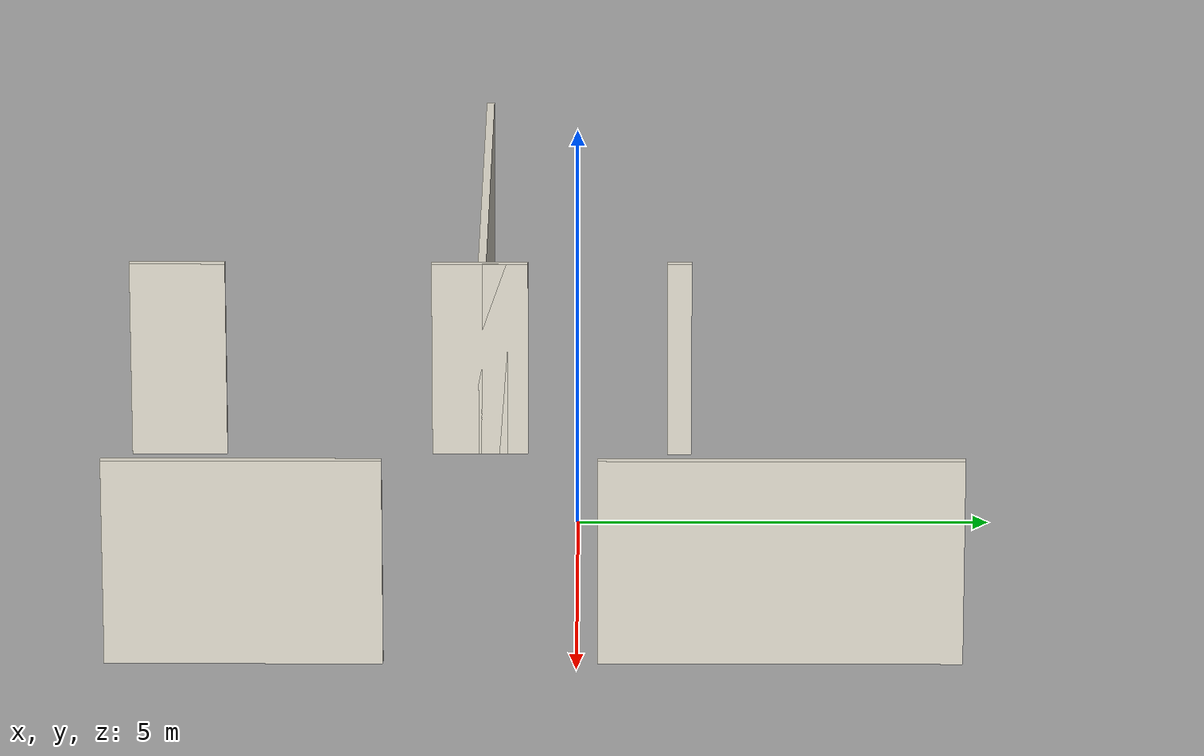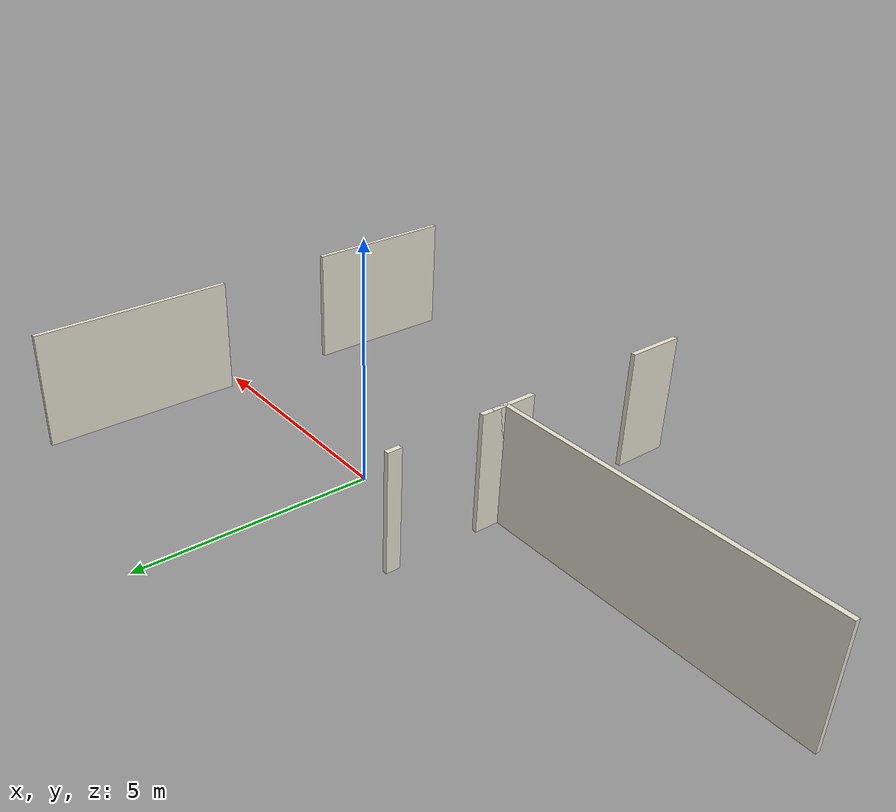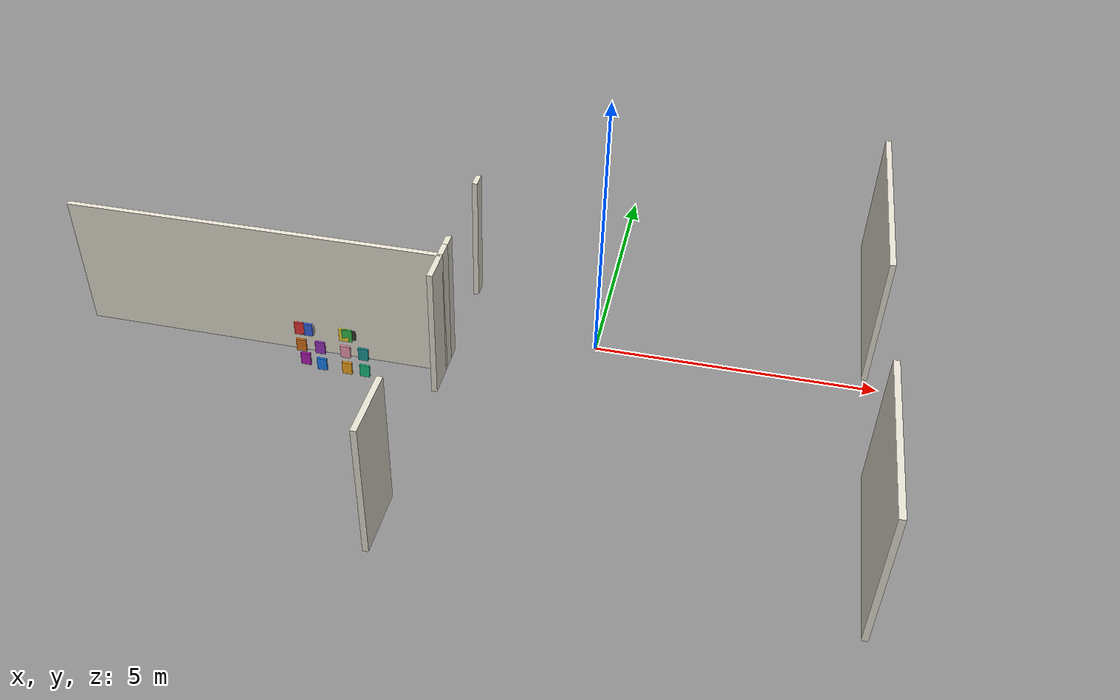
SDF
<sdf version="1.6">
 <world name="world_demo">
  <atmosphere type="adiabatic"/>
  <physics name="1ms" type="ignored">
   <max_step_size>0.01</max_step_size>
   <real_time_factor>1</real_time_factor>
  </physics>
  <plugin name="ignition::gazebo::systems::Physics" filename="libignition-gazebo-physics-system.so"/>
  <plugin name="ignition::gazebo::systems::UserCommands" filename="libignition-gazebo-user-commands-system.so"/>
  <plugin name="ignition::gazebo::systems::SceneBroadcaster" filename="libignition-gazebo-scene-broadcaster-system.so"/>
  <plugin name="ignition::gazebo::systems::Imu" filename="ignition-gazebo-imu-system"/>
  <plugin name="ignition::gazebo::systems::Sensors" filename="ignition-gazebo-sensors-system">
   <render_engine>ogre2</render_engine>
  </plugin>
  <plugin name="icclab::DynamicGripperAttach" filename="DynamicGripperAttach">
   <parent_model>summit</parent_model>
   <parent_link>arm_wrist_3_link</parent_link>
   <attach_topic>/gripper/attach</attach_topic>
   <detach_topic>/gripper/detach</detach_topic>
  </plugin>
  <scene>
   <ambient>0.4 0.4 0.4 1</ambient>
   <background>0.7 0.7 0.7 1</background>
   <shadows>false</shadows>
   <grid>false</grid>
   <origin_visual>false</origin_visual>
  </scene>
  <spherical_coordinates>
   <surface_model>EARTH_WGS84</surface_model>
   <latitude_deg>0</latitude_deg>
   <longitude_deg>0</longitude_deg>
   <elevation>0</elevation>
   <heading_deg>0</heading_deg>
  </spherical_coordinates>
  <light name="LivingRoom_CeilingLight_0" type="point">
   <pose>1.194296 4.155759 2.2 0 -0 0</pose>
   <diffuse>0.5 0.5 0.5 1</diffuse>
   <specular>0.1 0.1 0.1 1</specular>
   <attenuation>
    <range>20</range>
    <constant>0.32</constant>
    <linear>0.01</linear>
    <quadratic>0.03</quadratic>
   </attenuation>
   <cast_shadows>0</cast_shadows>
   <direction>0 0 -1</direction>
  </light>
  <light name="LivingRoom_CeilingLight_1" type="point">
   <pose>1.194296 -1.589959 2.2 0 -0 0</pose>
   <diffuse>0.5 0.5 0.5 1</diffuse>
   <specular>0.1 0.1 0.1 1</specular>
   <attenuation>
    <range>20</range>
    <constant>0.05</constant>
    <linear>0.01</linear>
    <quadratic>0.09</quadratic>
   </attenuation>
   <cast_shadows>0</cast_shadows>
   <direction>0 0 -1</direction>
  </light>
  <light name="LivingRoom_WallLight_0" type="point">
   <pose>1.76956 -5.444370 2.2 0 -0 0</pose>
   <diffuse>0.24 0.24 0.24 1</diffuse>
   <specular>0.1 0.1 0.1 1</specular>
   <attenuation>
    <range>20</range>
    <constant>0.12</constant>
    <linear>0.00</linear>
    <quadratic>0.03</quadratic>
   </attenuation>
   <direction>0 0 -1</direction>
  </light>
  <light name="LivingRoom_WallLight_1" type="point">
   <pose>-0.13826 -5.444370 2.2 0 -0 0</pose>
   <diffuse>0.24 0.24 0.24 1</diffuse>
   <specular>0.1 0.1 0.1 1</specular>
   <attenuation>
    <range>20</range>
    <constant>0.12</constant>
    <linear>0.00</linear>
    <quadratic>0.03</quadratic>
   </attenuation>
   <direction>0 0 -1</direction>
  </light>
  <light name="TV_Light_0" type="point">
   <pose>0.8269 -4.939577 1.1 0 -0 0</pose>
   <diffuse>0.31372 0.31372 0.34901 1</diffuse>
   <specular>0.1 0.1 0.1 1</specular>
   <attenuation>
    <range>3</range>
    <constant>0.10</constant>
    <linear>0.04</linear>
    <quadratic>0.50</quadratic>
   </attenuation>
   <direction>0 0 -1</direction>
  </light>
  <light name="BedRoom_Portrait_Light_0" type="spot">
   <pose>-6.190379 -1.829697 1.5587 0.3 -0 0.0</pose>
   <diffuse>0.5 0.5 0.5 1</diffuse>
   <specular>0.1 0.1 0.1 1</specular>
   <attenuation>
    <range>20</range>
    <constant>0.50</constant>
    <linear>0.01</linear>
    <quadratic>0.00</quadratic>
   </attenuation>
   <spot><inner_angle>0.6</inner_angle><outer_angle>1.0</outer_angle><falloff>1.0</falloff></spot>
   <direction>0 0 -1</direction>
  </light>
  <light name="BedRoom_CeilingLight_0" type="point">
   <pose>-6.451061 -0.692040 2.000000 0 -0 0</pose>
   <diffuse>0.5 0.5 0.5 1</diffuse>
   <specular>0.1 0.1 0.1 1</specular>
   <attenuation>
    <range>20</range>
    <constant>0.32</constant>
    <linear>0.01</linear>
    <quadratic>0.03</quadratic>
   </attenuation>
   <cast_shadows>0</cast_shadows>
   <direction>0 0 -1</direction>
  </light>
  <light name="Kitchen_CeilingLight_0" type="point">
   <pose>7.8582 -1.5905 2.280000 0 -0 0</pose>
   <diffuse>0.5 0.5 0.5 1</diffuse>
   <specular>0.1 0.1 0.1 1</specular>
   <attenuation>
    <range>20</range>
    <constant>0.3</constant>
    <linear>0.01</linear>
    <quadratic>0.01</quadratic>
   </attenuation>
   <cast_shadows>0</cast_shadows>
   <direction>0 0 -1</direction>
  </light>
  <model name="Bedroom_South_Divider">
   <static>true</static>
   <pose>-5.95 -1.21 1.25 0 0 0</pose>
   <link name="link">
    <collision name="collision"><geometry><box><size>6.9 0.1 2.5</size></box></geometry></collision>
    <visual name="visual">
     <geometry><box><size>6.9 0.1 2.5</size></box></geometry>
     <material>
      <ambient>0.9 0.88 0.82 1</ambient>
      <diffuse>0.9 0.88 0.82 1</diffuse>
      <specular>0.1 0.1 0.1 1</specular>
     </material>
    </visual>
   </link>
  </model>
  <model name="Bedroom_East_North">
   <static>true</static>
   <pose>-2.55 1.25 1.25 0 0 0</pose>
   <link name="link">
    <collision name="collision"><geometry><box><size>0.1 0.30 2.5</size></box></geometry></collision>
    <visual name="visual">
     <geometry><box><size>0.1 0.30 2.5</size></box></geometry>
     <material>
      <ambient>0.9 0.88 0.82 1</ambient>
      <diffuse>0.9 0.88 0.82 1</diffuse>
      <specular>0.1 0.1 0.1 1</specular>
     </material>
    </visual>
   </link>
  </model>
  <model name="Bedroom_East_South">
   <static>true</static>
   <pose>-2.55 -1.055 1.25 0 0 0</pose>
   <link name="link">
    <collision name="collision"><geometry><box><size>0.1 0.31 2.5</size></box></geometry></collision>
    <visual name="visual">
     <geometry><box><size>0.1 0.31 2.5</size></box></geometry>
     <material>
      <ambient>0.9 0.88 0.82 1</ambient>
      <diffuse>0.9 0.88 0.82 1</diffuse>
      <specular>0.1 0.1 0.1 1</specular>
     </material>
    </visual>
   </link>
  </model>
  <model name="KidsRoom_East_North">
   <static>true</static>
   <pose>-2.55 -1.24 1.25 0 0 0</pose>
   <link name="link">
    <collision name="collision"><geometry><box><size>0.1 1.20 2.5</size></box></geometry></collision>
    <visual name="visual">
     <geometry><box><size>0.1 1.20 2.5</size></box></geometry>
     <material>
      <ambient>0.9 0.88 0.82 1</ambient>
      <diffuse>0.9 0.88 0.82 1</diffuse>
      <specular>0.1 0.1 0.1 1</specular>
     </material>
    </visual>
   </link>
  </model>
  <model name="KidsRoom_East_South">
   <static>true</static>
   <pose>-2.55 -5.005 1.25 0 0 0</pose>
   <link name="link">
    <collision name="collision"><geometry><box><size>0.1 1.19 2.5</size></box></geometry></collision>
    <visual name="visual">
     <geometry><box><size>0.1 1.19 2.5</size></box></geometry>
     <material>
      <ambient>0.9 0.88 0.82 1</ambient>
      <diffuse>0.9 0.88 0.82 1</diffuse>
      <specular>0.1 0.1 0.1 1</specular>
     </material>
    </visual>
   </link>
  </model>
  <model name="KidsRoom_Book_1">
   <static>true</static>
   <pose>-5.00 -1.76 0.895 0 0 0</pose>
   <link name="link">
    <visual name="visual">
     <geometry><box><size>0.18 0.04 0.25</size></box></geometry>
     <material><ambient>0.7 0.1 0.1 1</ambient><diffuse>0.9 0.2 0.2 1</diffuse></material>
    </visual>
    <collision name="collision"><geometry><box><size>0.18 0.04 0.25</size></box></geometry></collision>
   </link>
  </model>
  <model name="KidsRoom_Book_2">
   <static>true</static>
   <pose>-4.85 -1.76 0.895 0 0 0</pose>
   <link name="link">
    <visual name="visual">
     <geometry><box><size>0.18 0.04 0.25</size></box></geometry>
     <material><ambient>0.1 0.2 0.6 1</ambient><diffuse>0.2 0.4 0.9 1</diffuse></material>
    </visual>
    <collision name="collision"><geometry><box><size>0.18 0.04 0.25</size></box></geometry></collision>
   </link>
  </model>
  <model name="KidsRoom_Book_3">
   <static>true</static>
   <pose>-4.18 -1.76 0.895 0 0 0</pose>
   <link name="link">
    <visual name="visual">
     <geometry><box><size>0.18 0.04 0.25</size></box></geometry>
     <material><ambient>0.7 0.6 0.1 1</ambient><diffuse>0.95 0.85 0.2 1</diffuse></material>
    </visual>
    <collision name="collision"><geometry><box><size>0.18 0.04 0.25</size></box></geometry></collision>
   </link>
  </model>
  <model name="KidsRoom_Book_4">
   <static>true</static>
   <pose>-4.12 -1.76 0.895 0 0 0</pose>
   <link name="link">
    <visual name="visual">
     <geometry><box><size>0.18 0.04 0.25</size></box></geometry>
     <material><ambient>0.1 0.5 0.2 1</ambient><diffuse>0.2 0.75 0.3 1</diffuse></material>
    </visual>
    <collision name="collision"><geometry><box><size>0.18 0.04 0.25</size></box></geometry></collision>
   </link>
  </model>
  <model name="KidsRoom_Book_5">
   <static>true</static>
   <pose>-5.00 -1.76 0.525 0 0 0</pose>
   <link name="link">
    <visual name="visual">
     <geometry><box><size>0.18 0.04 0.25</size></box></geometry>
     <material><ambient>0.6 0.3 0.05 1</ambient><diffuse>0.85 0.45 0.1 1</diffuse></material>
    </visual>
    <collision name="collision"><geometry><box><size>0.18 0.04 0.25</size></box></geometry></collision>
   </link>
  </model>
  <model name="KidsRoom_Book_6">
   <static>true</static>
   <pose>-4.65 -1.76 0.525 0 0 0</pose>
   <link name="link">
    <visual name="visual">
     <geometry><box><size>0.18 0.04 0.25</size></box></geometry>
     <material><ambient>0.4 0.1 0.5 1</ambient><diffuse>0.6 0.2 0.75 1</diffuse></material>
    </visual>
    <collision name="collision"><geometry><box><size>0.18 0.04 0.25</size></box></geometry></collision>
   </link>
  </model>
  <model name="KidsRoom_Book_7">
   <static>true</static>
   <pose>-4.18 -1.76 0.525 0 0 0</pose>
   <link name="link">
    <visual name="visual">
     <geometry><box><size>0.18 0.04 0.25</size></box></geometry>
     <material><ambient>0.7 0.4 0.5 1</ambient><diffuse>0.95 0.6 0.7 1</diffuse></material>
    </visual>
    <collision name="collision"><geometry><box><size>0.18 0.04 0.25</size></box></geometry></collision>
   </link>
  </model>
  <model name="KidsRoom_Book_8">
   <static>true</static>
   <pose>-3.85 -1.76 0.525 0 0 0</pose>
   <link name="link">
    <visual name="visual">
     <geometry><box><size>0.18 0.04 0.25</size></box></geometry>
     <material><ambient>0.05 0.4 0.4 1</ambient><diffuse>0.1 0.6 0.6 1</diffuse></material>
    </visual>
    <collision name="collision"><geometry><box><size>0.18 0.04 0.25</size></box></geometry></collision>
   </link>
  </model>
  <model name="KidsRoom_Book_9">
   <static>true</static>
   <pose>-4.92 -1.62 0.79 0 1.5708 0</pose>
   <link name="link">
    <visual name="visual">
     <geometry><box><size>0.18 0.04 0.25</size></box></geometry>
     <material><ambient>0.85 0.85 0.85 1</ambient><diffuse>0.95 0.95 0.95 1</diffuse></material>
    </visual>
    <collision name="collision"><geometry><box><size>0.18 0.04 0.25</size></box></geometry></collision>
   </link>
  </model>
  <model name="KidsRoom_Book_10">
   <static>true</static>
   <pose>-4.15 -1.62 0.79 0 1.5708 0</pose>
   <link name="link">
    <visual name="visual">
     <geometry><box><size>0.18 0.04 0.25</size></box></geometry>
     <material><ambient>0.15 0.15 0.15 1</ambient><diffuse>0.25 0.25 0.25 1</diffuse></material>
    </visual>
    <collision name="collision"><geometry><box><size>0.18 0.04 0.25</size></box></geometry></collision>
   </link>
  </model>
  <model name="KidsRoom_Book_11">
   <static>true</static>
   <pose>-4.95 -1.76 0.22 0 0 0</pose>
   <link name="link">
    <visual name="visual">
     <geometry><box><size>0.18 0.04 0.25</size></box></geometry>
     <material><ambient>0.5 0.05 0.5 1</ambient><diffuse>0.7 0.1 0.7 1</diffuse></material>
    </visual>
    <collision name="collision"><geometry><box><size>0.18 0.04 0.25</size></box></geometry></collision>
   </link>
  </model>
  <model name="KidsRoom_Book_12">
   <static>true</static>
   <pose>-4.65 -1.76 0.15 0 0 0</pose>
   <link name="link">
    <visual name="visual">
     <geometry><box><size>0.18 0.04 0.25</size></box></geometry>
     <material><ambient>0.05 0.3 0.6 1</ambient><diffuse>0.1 0.5 0.95 1</diffuse></material>
    </visual>
    <collision name="collision"><geometry><box><size>0.18 0.04 0.25</size></box></geometry></collision>
   </link>
  </model>
  <model name="KidsRoom_Book_13">
   <static>true</static>
   <pose>-4.18 -1.76 0.15 0 0 0</pose>
   <link name="link">
    <visual name="visual">
     <geometry><box><size>0.18 0.04 0.25</size></box></geometry>
     <material><ambient>0.7 0.4 0.05 1</ambient><diffuse>0.95 0.65 0.1 1</diffuse></material>
    </visual>
    <collision name="collision"><geometry><box><size>0.18 0.04 0.25</size></box></geometry></collision>
   </link>
  </model>
  <model name="KidsRoom_Book_14">
   <static>true</static>
   <pose>-3.85 -1.76 0.15 0 0 0</pose>
   <link name="link">
    <visual name="visual">
     <geometry><box><size>0.18 0.04 0.25</size></box></geometry>
     <material><ambient>0.05 0.5 0.3 1</ambient><diffuse>0.1 0.75 0.5 1</diffuse></material>
    </visual>
    <collision name="collision"><geometry><box><size>0.18 0.04 0.25</size></box></geometry></collision>
   </link>
  </model>
  <model name="LivingRoom_East_North">
   <static>true</static>
   <pose>4.79 2.375 1.25 0 0 0</pose>
   <link name="link">
    <collision name="collision"><geometry><box><size>0.1 4.25 2.5</size></box></geometry></collision>
    <visual name="visual">
     <geometry><box><size>0.1 4.25 2.5</size></box></geometry>
     <material>
      <ambient>0.9 0.88 0.82 1</ambient>
      <diffuse>0.9 0.88 0.82 1</diffuse>
      <specular>0.1 0.1 0.1 1</specular>
     </material>
    </visual>
   </link>
  </model>
  <model name="LivingRoom_East_South">
   <static>true</static>
   <pose>4.79 -3.875 1.25 0 0 0</pose>
   <link name="link">
    <collision name="collision"><geometry><box><size>0.1 3.25 2.5</size></box></geometry></collision>
    <visual name="visual">
     <geometry><box><size>0.1 3.25 2.5</size></box></geometry>
     <material>
      <ambient>0.9 0.88 0.82 1</ambient>
      <diffuse>0.9 0.88 0.82 1</diffuse>
      <specular>0.1 0.1 0.1 1</specular>
     </material>
    </visual>
   </link>
  </model>
 </world>
</sdf>
